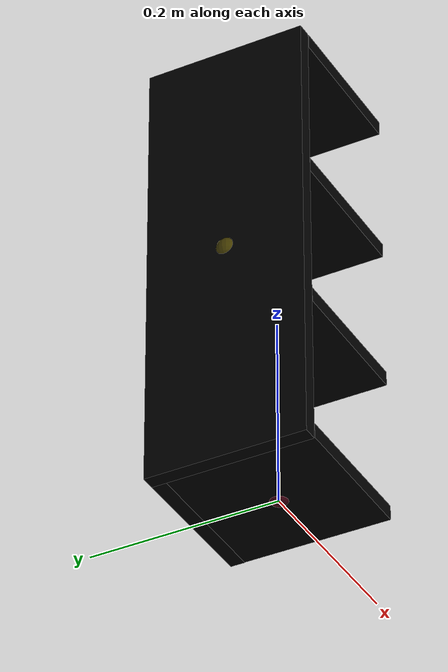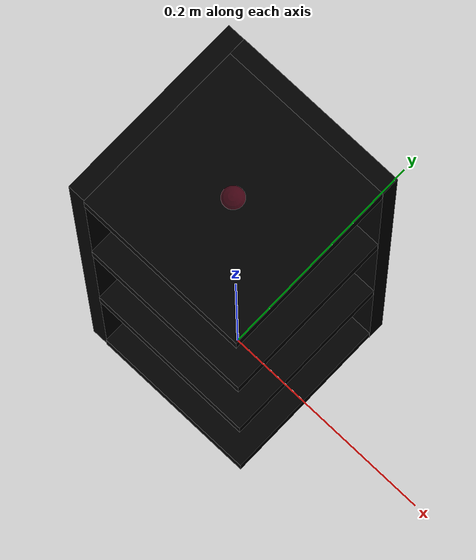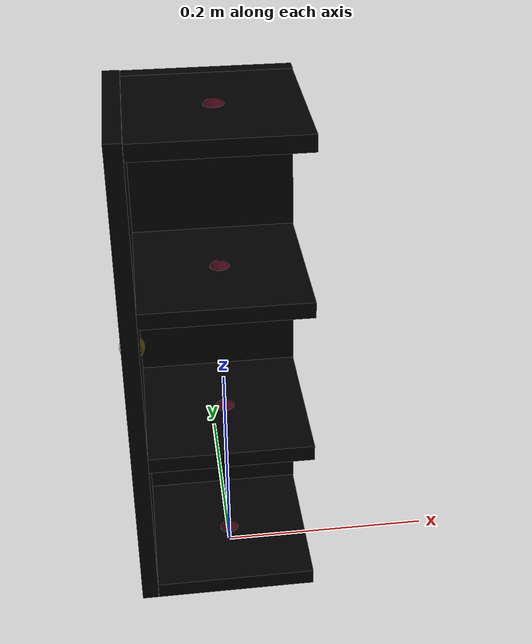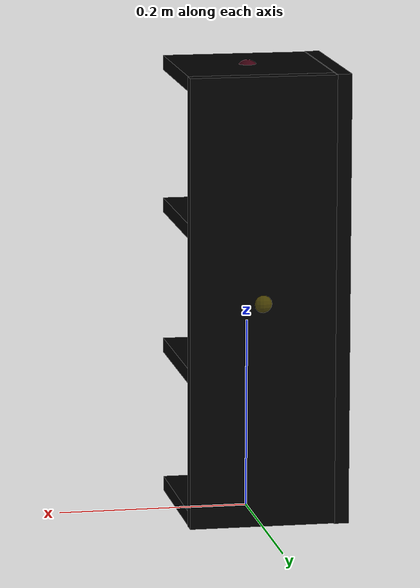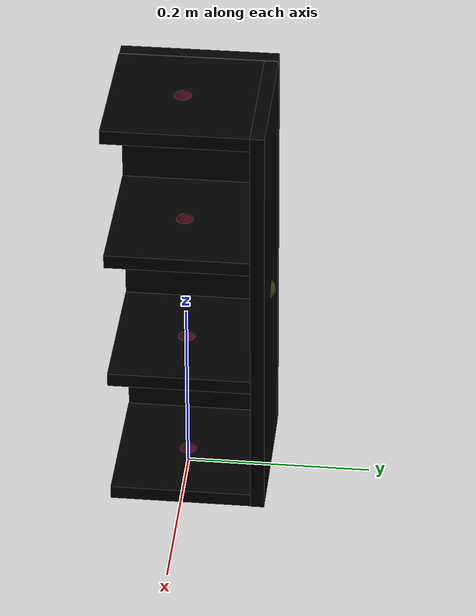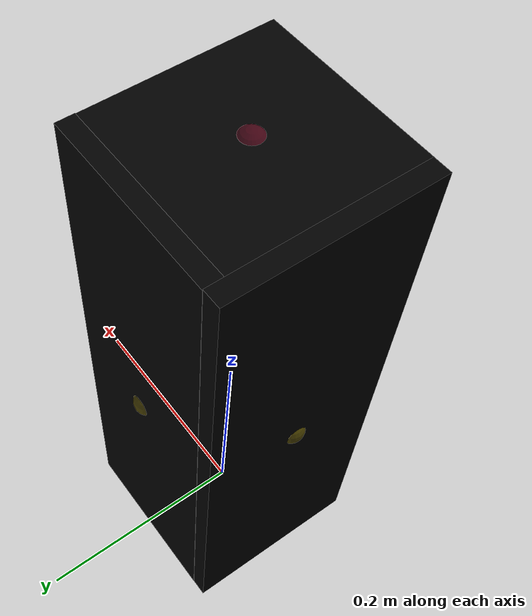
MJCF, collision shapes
<mujoco model="shelf_lillagen_0927">
  <custom>
    <numeric data="0.140321 0.26543 0.00759 0.999937 0.0 0.0 0.011207" name="0_part0_initpos" />
    <numeric data="0.064424 0.045945 0.007465 0.502601 -0.502602 0.497385 -0.497385" name="5_part5_initpos" />
    <numeric data="0.038382 -0.21002 0.00759 0.706675 -0.024703 -0.706675 -0.024703" name="4_part4_initpos" />
    <numeric data="-0.36878 0.235998 0.00759 -0.995994 -0.0 0.0 -0.089418" name="3_part3_initpos" />
    <numeric data="-0.123636 0.267952 0.00759 -0.998502 0.0 0.0 -0.054706" name="2_part2_initpos" />
    <numeric data="0.401777 0.265276 0.00759 1.0 0.0 0.0 2.6e-05" name="1_part1_initpos" />
  </custom>
  <asset>
    <mesh file="shelf_lillagen_0927/0.stl" name="part0" scale="0.0006 0.0006 0.0006" />
    <mesh file="shelf_lillagen_0927/5.stl" name="part5" scale="0.0006 0.0006 0.0006" />
    <mesh file="shelf_lillagen_0927/4.stl" name="part4" scale="0.0006 0.0006 0.0006" />
    <mesh file="shelf_lillagen_0927/3.stl" name="part3" scale="0.0006 0.0006 0.0006" />
    <mesh file="shelf_lillagen_0927/2.stl" name="part2" scale="0.0006 0.0006 0.0006" />
    <mesh file="shelf_lillagen_0927/1.stl" name="part1" scale="0.0006 0.0006 0.0006" />
  </asset>
  <worldbody><body name="combined_body" pos="0 0 0.16022000732421872" quat="1 0 0 0"><geom conaffinity="0" contype="0" density="0" mesh="part0" name="0_part0_mesh" pos="-0.0 0.0 0.0" rgba="0.82 0.71 0.55 1" type="mesh" quat="1 0 0 0" />
      <geom density="50" name="noviz_collision_0_part0_0" pos="-0.0 0.0 0.0" quat="1 0 0 0" rgba="0 0 0 0" size="0.07619999999999999 0.07619999999999999 0.007619999999999999" solref="0.001 1" type="box" />
    <site name="0_part0_horizontal_radius_site" pos="-0.0 0.0 0.0" quat="1 0 0 0" rgba="0 0 0 0" size="0.012" />
      <site name="0_part0_top_site" pos="-0.0 0.0 0.0" quat="1 0 0 0" rgba="0 0 0 0" size="0.012" />
      <site name="0_part0_bottom_site" pos="-0.0 0.0 0.0" quat="1 0 0 0" rgba="0 0 0 0" size="0.012" />
      <site name="0_part0_corner_site8" pos="-0.0 0.0 0.0" quat="1 0 0 0" rgba="0 0 0 0" size="0.012" />
      <site name="0_part0_corner_site7" pos="-0.0 0.0 0.0" quat="1 0 0 0" rgba="0 0 0 0" size="0.012" />
      <site name="0_part0_corner_site6" pos="-0.0 0.0 0.0" quat="1 0 0 0" rgba="0 0 0 0" size="0.012" />
      <site name="0_part0_corner_site5" pos="-0.0 0.0 0.0" quat="1 0 0 0" rgba="0 0 0 0" size="0.012" />
      <site name="0_part0_corner_site4" pos="-0.0 0.0 0.0" quat="1 0 0 0" rgba="0 0 0 0" size="0.012" />
      <site name="0_part0_corner_site3" pos="-0.0 0.0 0.0" quat="1 0 0 0" rgba="0 0 0 0" size="0.012" />
      <site name="0_part0_corner_site2" pos="-0.0 0.0 0.0" quat="1 0 0 0" rgba="0 0 0 0" size="0.012" />
      <site name="0_part0_corner_site1" pos="-0.0 0.0 0.0" quat="1 0 0 0" rgba="0 0 0 0" size="0.012" />
      <site name="panel-rightpanel,0,180,conn_site2" pos="-0.0 0.0 0.0" quat="1 0 0 0" rgba="0.9019 0.0980 0.2941 0.3" size="0.012" />
      <site name="panel-leftpanel,0,180,conn_site3" pos="-0.0 0.0 0.0" quat="1 0 0 0" rgba="0.2352 0.7058 0.2941 0.3" size="0.012" />
      <geom conaffinity="0" contype="0" density="0" mesh="part5" name="5_part5_mesh" pos="-0.0 0.08382001188 0.07620000732" rgba="0.82 0.71 0.55 1" type="mesh" quat="1 0 0 0" />
      <geom density="50" name="noviz_collision_5_part5_0" pos="-0.0 0.08382001188 0.07620000732" quat="1 0 0 0" rgba="0 0 0 0" size="0.07647636 0.007557725999999999 0.23621999999999999" solref="0.001 1" type="box" />
    <site name="5_part5_horizontal_radius_site" pos="-0.0 0.08382001188 0.07620000732" quat="1 0 0 0" rgba="0 0 0 0" size="0.012" />
      <site name="5_part5_top_site" pos="-0.0 0.08382001188 0.07620000732" quat="1 0 0 0" rgba="0 0 0 0" size="0.012" />
      <site name="5_part5_bottom_site" pos="-0.0 0.08382001188 0.07620000732" quat="1 0 0 0" rgba="0 0 0 0" size="0.012" />
      <site name="5_part5_corner_site8" pos="-0.0 0.08382001188 0.07620000732" quat="1 0 0 0" rgba="0 0 0 0" size="0.012" />
      <site name="5_part5_corner_site7" pos="-0.0 0.08382001188 0.07620000732" quat="1 0 0 0" rgba="0 0 0 0" size="0.012" />
      <site name="5_part5_corner_site6" pos="-0.0 0.08382001188 0.07620000732" quat="1 0 0 0" rgba="0 0 0 0" size="0.012" />
      <site name="5_part5_corner_site5" pos="-0.0 0.08382001188 0.07620000732" quat="1 0 0 0" rgba="0 0 0 0" size="0.012" />
      <site name="5_part5_corner_site4" pos="-0.0 0.08382001188 0.07620000732" quat="1 0 0 0" rgba="0 0 0 0" size="0.012" />
      <site name="5_part5_corner_site3" pos="-0.0 0.08382001188 0.07620000732" quat="1 0 0 0" rgba="0 0 0 0" size="0.012" />
      <site name="5_part5_corner_site2" pos="-0.0 0.08382001188 0.07620000732" quat="1 0 0 0" rgba="0 0 0 0" size="0.012" />
      <site name="5_part5_corner_site1" pos="-0.0 0.08382001188 0.07620000732" quat="1 0 0 0" rgba="0 0 0 0" size="0.012" />
      <site name="rightpanel-leftpanel,0,180,conn_site1" pos="-0.0 0.08382001188 0.07620000732" quat="1 0 0 0" rgba="1.0 0.8823 0.0980 0.3" size="0.012" />
      <site name="rightpanel-panel,0,180,conn_site4" pos="-0.0 0.08382001188 0.07620000732" quat="1 0 0 0" rgba="0.9019 0.0980 0.2941 0.3" size="0.012" />
      <site name="rightpanel-panel,0,180,conn_site3" pos="-0.0 0.08382001188 0.07620000732" quat="1 0 0 0" rgba="0.9019 0.0980 0.2941 0.3" size="0.012" />
      <site name="rightpanel-panel,0,180,conn_site2" pos="-0.0 0.08382001188 0.07620000732" quat="1 0 0 0" rgba="0.9019 0.0980 0.2941 0.3" size="0.012" />
      <site name="rightpanel-panel,0,180,conn_site1" pos="-0.0 0.08382001188 0.07620000732" quat="1 0 0 0" rgba="0.9019 0.0980 0.2941 0.3" size="0.012" />
      <geom conaffinity="0" contype="0" density="0" mesh="part4" name="4_part4_mesh" pos="-0.08381999904 0.007620009599999999 0.07620000732" rgba="0.82 0.71 0.55 1" type="mesh" quat="1 0 0 0" />
      <geom density="50" name="noviz_collision_4_part4_0" pos="-0.08381999904 0.007620009599999999 0.07620000732" quat="1 0 0 0" rgba="0 0 0 0" size="0.007689066 0.08345514 0.23683019999999996" solref="0.001 1" type="box" />
    <site name="4_part4_horizontal_radius_site" pos="-0.08381999904 0.007620009599999999 0.07620000732" quat="1 0 0 0" rgba="0 0 0 0" size="0.012" />
      <site name="4_part4_top_site" pos="-0.08381999904 0.007620009599999999 0.07620000732" quat="1 0 0 0" rgba="0 0 0 0" size="0.012" />
      <site name="4_part4_bottom_site" pos="-0.08381999904 0.007620009599999999 0.07620000732" quat="1 0 0 0" rgba="0 0 0 0" size="0.012" />
      <site name="4_part4_corner_site8" pos="-0.08381999904 0.007620009599999999 0.07620000732" quat="1 0 0 0" rgba="0 0 0 0" size="0.012" />
      <site name="4_part4_corner_site7" pos="-0.08381999904 0.007620009599999999 0.07620000732" quat="1 0 0 0" rgba="0 0 0 0" size="0.012" />
      <site name="4_part4_corner_site6" pos="-0.08381999904 0.007620009599999999 0.07620000732" quat="1 0 0 0" rgba="0 0 0 0" size="0.012" />
      <site name="4_part4_corner_site5" pos="-0.08381999904 0.007620009599999999 0.07620000732" quat="1 0 0 0" rgba="0 0 0 0" size="0.012" />
      <site name="4_part4_corner_site4" pos="-0.08381999904 0.007620009599999999 0.07620000732" quat="1 0 0 0" rgba="0 0 0 0" size="0.012" />
      <site name="4_part4_corner_site3" pos="-0.08381999904 0.007620009599999999 0.07620000732" quat="1 0 0 0" rgba="0 0 0 0" size="0.012" />
      <site name="4_part4_corner_site2" pos="-0.08381999904 0.007620009599999999 0.07620000732" quat="1 0 0 0" rgba="0 0 0 0" size="0.012" />
      <site name="4_part4_corner_site1" pos="-0.08381999904 0.007620009599999999 0.07620000732" quat="1 0 0 0" rgba="0 0 0 0" size="0.012" />
      <site name="leftpanel-rightpanel,0,180,conn_site1" pos="-0.08381999904 0.007620009599999999 0.07620000732" quat="1 0 0 0" rgba="1.0 0.8823 0.0980 0.3" size="0.012" />
      <site name="leftpanel-panel,0,180,conn_site4" pos="-0.08381999904 0.007620009599999999 0.07620000732" quat="1 0 0 0" rgba="0.2352 0.7058 0.2941 0.3" size="0.012" />
      <site name="leftpanel-panel,0,180,conn_site3" pos="-0.08381999904 0.007620009599999999 0.07620000732" quat="1 0 0 0" rgba="0.2352 0.7058 0.2941 0.3" size="0.012" />
      <site name="leftpanel-panel,0,180,conn_site2" pos="-0.08381999904 0.007620009599999999 0.07620000732" quat="1 0 0 0" rgba="0.2352 0.7058 0.2941 0.3" size="0.012" />
      <site name="leftpanel-panel,0,180,conn_site1" pos="-0.08381999904 0.007620009599999999 0.07620000732" quat="1 0 0 0" rgba="0.2352 0.7058 0.2941 0.3" size="0.012" />
      <geom conaffinity="0" contype="0" density="0" mesh="part3" name="3_part3_mesh" pos="-0.0 4.56e-09 0.30480000731999995" rgba="0.82 0.71 0.55 1" type="mesh" quat="1 0 0 0" />
      <geom density="50" name="noviz_collision_3_part3_0" pos="-0.0 4.56e-09 0.30480000731999995" quat="1 0 0 0" rgba="0 0 0 0" size="0.07598345999999999 0.07641653999999999 0.007635257999999999" solref="0.001 1" type="box" />
    <site name="3_part3_horizontal_radius_site" pos="-0.0 4.56e-09 0.30480000731999995" quat="1 0 0 0" rgba="0 0 0 0" size="0.012" />
      <site name="3_part3_top_site" pos="-0.0 4.56e-09 0.30480000731999995" quat="1 0 0 0" rgba="0 0 0 0" size="0.012" />
      <site name="3_part3_bottom_site" pos="-0.0 4.56e-09 0.30480000731999995" quat="1 0 0 0" rgba="0 0 0 0" size="0.012" />
      <site name="3_part3_corner_site8" pos="-0.0 4.56e-09 0.30480000731999995" quat="1 0 0 0" rgba="0 0 0 0" size="0.012" />
      <site name="3_part3_corner_site7" pos="-0.0 4.56e-09 0.30480000731999995" quat="1 0 0 0" rgba="0 0 0 0" size="0.012" />
      <site name="3_part3_corner_site6" pos="-0.0 4.56e-09 0.30480000731999995" quat="1 0 0 0" rgba="0 0 0 0" size="0.012" />
      <site name="3_part3_corner_site5" pos="-0.0 4.56e-09 0.30480000731999995" quat="1 0 0 0" rgba="0 0 0 0" size="0.012" />
      <site name="3_part3_corner_site4" pos="-0.0 4.56e-09 0.30480000731999995" quat="1 0 0 0" rgba="0 0 0 0" size="0.012" />
      <site name="3_part3_corner_site3" pos="-0.0 4.56e-09 0.30480000731999995" quat="1 0 0 0" rgba="0 0 0 0" size="0.012" />
      <site name="3_part3_corner_site2" pos="-0.0 4.56e-09 0.30480000731999995" quat="1 0 0 0" rgba="0 0 0 0" size="0.012" />
      <site name="3_part3_corner_site1" pos="-0.0 4.56e-09 0.30480000731999995" quat="1 0 0 0" rgba="0 0 0 0" size="0.012" />
      <site name="panel-rightpanel,0,180,conn_site4" pos="-0.0 4.56e-09 0.30480000731999995" quat="1 0 0 0" rgba="0.9019 0.0980 0.2941 0.3" size="0.012" />
      <site name="panel-leftpanel,0,180,conn_site1" pos="-0.0 4.56e-09 0.30480000731999995" quat="1 0 0 0" rgba="0.2352 0.7058 0.2941 0.3" size="0.012" />
      <geom conaffinity="0" contype="0" density="0" mesh="part2" name="2_part2_mesh" pos="-0.0 4.56e-09 -0.15239999999999998" rgba="0.82 0.71 0.55 1" type="mesh" quat="1 0 0 0" />
      <geom density="50" name="noviz_collision_2_part2_0" pos="-0.0 4.56e-09 -0.15239999999999998" quat="1 0 0 0" rgba="0 0 0 0" size="0.07598345999999999 0.07641653999999999 0.007635257999999999" solref="0.001 1" type="box" />
    <site name="2_part2_horizontal_radius_site" pos="-0.0 4.56e-09 -0.15239999999999998" quat="1 0 0 0" rgba="0 0 0 0" size="0.012" />
      <site name="2_part2_top_site" pos="-0.0 4.56e-09 -0.15239999999999998" quat="1 0 0 0" rgba="0 0 0 0" size="0.012" />
      <site name="2_part2_bottom_site" pos="-0.0 4.56e-09 -0.15239999999999998" quat="1 0 0 0" rgba="0 0 0 0" size="0.012" />
      <site name="2_part2_corner_site8" pos="-0.0 4.56e-09 -0.15239999999999998" quat="1 0 0 0" rgba="0 0 0 0" size="0.012" />
      <site name="2_part2_corner_site7" pos="-0.0 4.56e-09 -0.15239999999999998" quat="1 0 0 0" rgba="0 0 0 0" size="0.012" />
      <site name="2_part2_corner_site6" pos="-0.0 4.56e-09 -0.15239999999999998" quat="1 0 0 0" rgba="0 0 0 0" size="0.012" />
      <site name="2_part2_corner_site5" pos="-0.0 4.56e-09 -0.15239999999999998" quat="1 0 0 0" rgba="0 0 0 0" size="0.012" />
      <site name="2_part2_corner_site4" pos="-0.0 4.56e-09 -0.15239999999999998" quat="1 0 0 0" rgba="0 0 0 0" size="0.012" />
      <site name="2_part2_corner_site3" pos="-0.0 4.56e-09 -0.15239999999999998" quat="1 0 0 0" rgba="0 0 0 0" size="0.012" />
      <site name="2_part2_corner_site2" pos="-0.0 4.56e-09 -0.15239999999999998" quat="1 0 0 0" rgba="0 0 0 0" size="0.012" />
      <site name="2_part2_corner_site1" pos="-0.0 4.56e-09 -0.15239999999999998" quat="1 0 0 0" rgba="0 0 0 0" size="0.012" />
      <site name="panel-rightpanel,0,180,conn_site1" pos="-0.0 4.56e-09 -0.15239999999999998" quat="1 0 0 0" rgba="0.9019 0.0980 0.2941 0.3" size="0.012" />
      <site name="panel-leftpanel,0,180,conn_site4" pos="-0.0 4.56e-09 -0.15239999999999998" quat="1 0 0 0" rgba="0.2352 0.7058 0.2941 0.3" size="0.012" />
      <geom conaffinity="0" contype="0" density="0" mesh="part1" name="1_part1_mesh" pos="-0.0 0.0 0.15239999999999998" rgba="0.82 0.71 0.55 1" type="mesh" quat="1 0 0 0" />
      <geom density="50" name="noviz_collision_1_part1_0" pos="-0.0 0.0 0.15239999999999998" quat="1 0 0 0" rgba="0 0 0 0" size="0.07619999999999999 0.07619999999999999 0.007619999999999999" solref="0.001 1" type="box" />
    <site name="1_part1_horizontal_radius_site" pos="-0.0 0.0 0.15239999999999998" quat="1 0 0 0" rgba="0 0 0 0" size="0.012" />
      <site name="1_part1_top_site" pos="-0.0 0.0 0.15239999999999998" quat="1 0 0 0" rgba="0 0 0 0" size="0.012" />
      <site name="1_part1_bottom_site" pos="-0.0 0.0 0.15239999999999998" quat="1 0 0 0" rgba="0 0 0 0" size="0.012" />
      <site name="1_part1_corner_site8" pos="-0.0 0.0 0.15239999999999998" quat="1 0 0 0" rgba="0 0 0 0" size="0.012" />
      <site name="1_part1_corner_site7" pos="-0.0 0.0 0.15239999999999998" quat="1 0 0 0" rgba="0 0 0 0" size="0.012" />
      <site name="1_part1_corner_site6" pos="-0.0 0.0 0.15239999999999998" quat="1 0 0 0" rgba="0 0 0 0" size="0.012" />
      <site name="1_part1_corner_site5" pos="-0.0 0.0 0.15239999999999998" quat="1 0 0 0" rgba="0 0 0 0" size="0.012" />
      <site name="1_part1_corner_site4" pos="-0.0 0.0 0.15239999999999998" quat="1 0 0 0" rgba="0 0 0 0" size="0.012" />
      <site name="1_part1_corner_site3" pos="-0.0 0.0 0.15239999999999998" quat="1 0 0 0" rgba="0 0 0 0" size="0.012" />
      <site name="1_part1_corner_site2" pos="-0.0 0.0 0.15239999999999998" quat="1 0 0 0" rgba="0 0 0 0" size="0.012" />
      <site name="1_part1_corner_site1" pos="-0.0 0.0 0.15239999999999998" quat="1 0 0 0" rgba="0 0 0 0" size="0.012" />
      <site name="panel-rightpanel,0,180,conn_site3" pos="-0.0 0.0 0.15239999999999998" quat="1 0 0 0" rgba="0.9019 0.0980 0.2941 0.3" size="0.012" />
      <site name="panel-leftpanel,0,180,conn_site2" pos="-0.0 0.0 0.15239999999999998" quat="1 0 0 0" rgba="0.2352 0.7058 0.2941 0.3" size="0.012" />
      </body></worldbody><actuator />
  <sensor />
  <contact />
  <default />
</mujoco>
